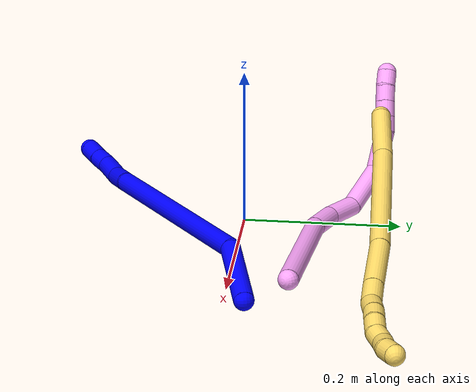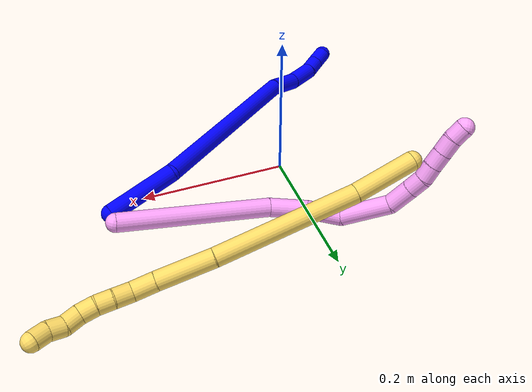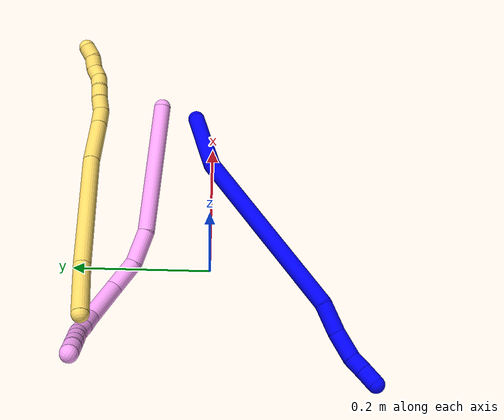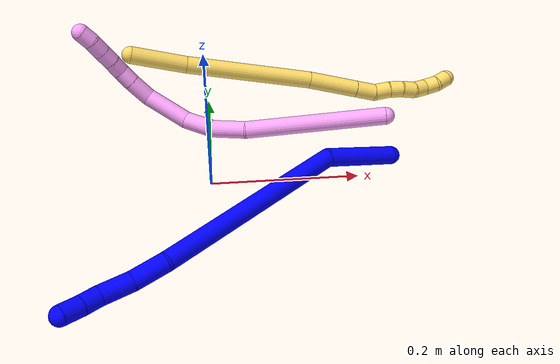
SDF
<sdf version="1.7">
 <world name="default">
  <model name="bin">
   <static>1</static>
   <link name="bottom">
    <collision name="collision-bottom">
     <pose>0 0 -0.01 0 -0 0</pose>
     <geometry><box><size>0.8 0.6 0.02</size></box></geometry>
     <surface>
      <friction><ode><mu>100</mu><mu2>100</mu2></ode></friction>
      <contact><collide_bitmask>65535</collide_bitmask></contact>
     </surface>
    </collision>
   </link>
   <link name="west_wall">
    <collision name="collision-west_wall">
     <pose>-0.41 0 0.1 0 -0 0</pose>
     <geometry><box><size>0.02 0.6 0.2</size></box></geometry>
     <surface>
      <friction><ode><mu>100</mu><mu2>100</mu2></ode></friction>
      <contact><collide_bitmask>65535</collide_bitmask></contact>
     </surface>
    </collision>
   </link>
   <link name="east_wall">
    <collision name="collision-east_wall">
     <pose>0.41 0 0.1 0 -0 0</pose>
     <geometry><box><size>0.02 0.6 0.2</size></box></geometry>
     <surface>
      <friction><ode><mu>100</mu><mu2>100</mu2></ode></friction>
      <contact><collide_bitmask>65535</collide_bitmask></contact>
     </surface>
    </collision>
   </link>
   <link name="south_wall">
    <collision name="collision-south_wall">
     <pose>0 -0.31 0.1 0 -0 0</pose>
     <geometry><box><size>0.8 0.02 0.2</size></box></geometry>
     <surface>
      <friction><ode><mu>100</mu><mu2>100</mu2></ode></friction>
      <contact><collide_bitmask>65535</collide_bitmask></contact>
     </surface>
    </collision>
   </link>
   <link name="north_wall">
    <collision name="collision-north_wall">
     <pose>0 0.31 0.1 0 -0 0</pose>
     <geometry><box><size>0.8 0.02 0.2</size></box></geometry>
     <surface>
      <friction><ode><mu>100</mu><mu2>100</mu2></ode></friction>
      <contact><collide_bitmask>65535</collide_bitmask></contact>
     </surface>
    </collision>
   </link>
  </model>
  <model name="1">
   <static>0</static>
   <link name="1">
    <collision name="collision-cylinder-e_1_1_4">
     <pose>-0.026952 -0.040658 -0.00738 1.75036 -0.577948 -0.684233</pose>
     <geometry><cylinder><radius>0.0125</radius><length>0.09867</length></cylinder></geometry>
     <surface>
      <friction><ode><mu>1.16</mu><mu2>1.16</mu2><slip1>0</slip1><slip2>0</slip2></ode></friction>
      <contact><ode><kp>1e+06</kp><kd>1</kd><max_vel>0</max_vel><min_depth>0.001</min_depth></ode></contact>
     </surface>
    </collision>
    <visual name="visual-cylinder-e_1_1_4">
     <pose>-0.026952 -0.040658 -0.00738 1.75036 -0.577948 -0.684233</pose>
     <geometry><cylinder><radius>0.0125</radius><length>0.09867</length></cylinder></geometry>
     <material><ambient>0 0 1 1</ambient></material>
    </visual>
    <collision name="collision-cylinder-e_2_4_5">
     <pose>-0.138691 -0.156689 -0.084368 2.31645 -0.690632 -1.37588</pose>
     <geometry><cylinder><radius>0.0125</radius><length>0.266196</length></cylinder></geometry>
     <surface>
      <friction><ode><mu>1.16</mu><mu2>1.16</mu2><slip1>0</slip1><slip2>0</slip2></ode></friction>
      <contact><ode><kp>1e+06</kp><kd>1</kd><max_vel>0</max_vel><min_depth>0.001</min_depth></ode></contact>
     </surface>
    </collision>
    <visual name="visual-cylinder-e_2_4_5">
     <pose>-0.138691 -0.156689 -0.084368 2.31645 -0.690632 -1.37588</pose>
     <geometry><cylinder><radius>0.0125</radius><length>0.266196</length></cylinder></geometry>
     <material><ambient>0 0 1 1</ambient></material>
    </visual>
    <collision name="collision-cylinder-e_3_5_6">
     <pose>-0.241615 -0.242906 -0.161461 2.17501 -0.942513 -1.5413</pose>
     <geometry><cylinder><radius>0.0125</radius><length>0.044837</length></cylinder></geometry>
     <surface>
      <friction><ode><mu>1.16</mu><mu2>1.16</mu2><slip1>0</slip1><slip2>0</slip2></ode></friction>
      <contact><ode><kp>1e+06</kp><kd>1</kd><max_vel>0</max_vel><min_depth>0.001</min_depth></ode></contact>
     </surface>
    </collision>
    <visual name="visual-cylinder-e_3_5_6">
     <pose>-0.241615 -0.242906 -0.161461 2.17501 -0.942513 -1.5413</pose>
     <geometry><cylinder><radius>0.0125</radius><length>0.044837</length></cylinder></geometry>
     <material><ambient>0 0 1 1</ambient></material>
    </visual>
    <collision name="collision-cylinder-e_4_6_7">
     <pose>-0.273389 -0.267106 -0.176761 2.10011 -0.72237 -1.16484</pose>
     <geometry><cylinder><radius>0.0125</radius><length>0.041251</length></cylinder></geometry>
     <surface>
      <friction><ode><mu>1.16</mu><mu2>1.16</mu2><slip1>0</slip1><slip2>0</slip2></ode></friction>
      <contact><ode><kp>1e+06</kp><kd>1</kd><max_vel>0</max_vel><min_depth>0.001</min_depth></ode></contact>
     </surface>
    </collision>
    <visual name="visual-cylinder-e_4_6_7">
     <pose>-0.273389 -0.267106 -0.176761 2.10011 -0.72237 -1.16484</pose>
     <geometry><cylinder><radius>0.0125</radius><length>0.041251</length></cylinder></geometry>
     <material><ambient>0 0 1 1</ambient></material>
    </visual>
    <collision name="collision-cylinder-e_5_7_8">
     <pose>-0.292974 -0.28825 -0.191028 2.26281 -0.5316 -1.04996</pose>
     <geometry><cylinder><radius>0.0125</radius><length>0.023466</length></cylinder></geometry>
     <surface>
      <friction><ode><mu>1.16</mu><mu2>1.16</mu2><slip1>0</slip1><slip2>0</slip2></ode></friction>
      <contact><ode><kp>1e+06</kp><kd>1</kd><max_vel>0</max_vel><min_depth>0.001</min_depth></ode></contact>
     </surface>
    </collision>
    <visual name="visual-cylinder-e_5_7_8">
     <pose>-0.292974 -0.28825 -0.191028 2.26281 -0.5316 -1.04996</pose>
     <geometry><cylinder><radius>0.0125</radius><length>0.023466</length></cylinder></geometry>
     <material><ambient>0 0 1 1</ambient></material>
    </visual>
    <collision name="collision-cylinder-e_6_8_2">
     <pose>-0.305209 -0.305094 -0.203963 2.19202 -0.513949 -0.945214</pose>
     <geometry><cylinder><radius>0.0125</radius><length>0.02558</length></cylinder></geometry>
     <surface>
      <friction><ode><mu>1.16</mu><mu2>1.16</mu2><slip1>0</slip1><slip2>0</slip2></ode></friction>
      <contact><ode><kp>1e+06</kp><kd>1</kd><max_vel>0</max_vel><min_depth>0.001</min_depth></ode></contact>
     </surface>
    </collision>
    <visual name="visual-cylinder-e_6_8_2">
     <pose>-0.305209 -0.305094 -0.203963 2.19202 -0.513949 -0.945214</pose>
     <geometry><cylinder><radius>0.0125</radius><length>0.02558</length></cylinder></geometry>
     <material><ambient>0 0 1 1</ambient></material>
    </visual>
    <collision name="collision-sphere-2">
     <pose>-0.311497 -0.31415 -0.210446 0 -0 0</pose>
     <geometry><sphere><radius>0.0125</radius></sphere></geometry>
     <surface>
      <friction><ode><mu>1.16</mu><mu2>1.16</mu2><slip1>0</slip1><slip2>0</slip2></ode></friction>
      <contact><ode><kp>1e+06</kp><kd>1</kd><max_vel>0</max_vel><min_depth>0.001</min_depth></ode></contact>
     </surface>
    </collision>
    <visual name="visual-sphere-2">
     <pose>-0.311497 -0.31415 -0.210446 0 -0 0</pose>
     <geometry><sphere><radius>0.0125</radius></sphere></geometry>
     <material><ambient>0 0 1 1</ambient></material>
    </visual>
    <collision name="collision-sphere-4">
     <pose>-0.053904 -0.081316 -0.014761 0 -0 0</pose>
     <geometry><sphere><radius>0.0125</radius></sphere></geometry>
     <surface>
      <friction><ode><mu>1.16</mu><mu2>1.16</mu2><slip1>0</slip1><slip2>0</slip2></ode></friction>
      <contact><ode><kp>1e+06</kp><kd>1</kd><max_vel>0</max_vel><min_depth>0.001</min_depth></ode></contact>
     </surface>
    </collision>
    <visual name="visual-sphere-4">
     <pose>-0.053904 -0.081316 -0.014761 0 -0 0</pose>
     <geometry><sphere><radius>0.0125</radius></sphere></geometry>
     <material><ambient>0 0 1 1</ambient></material>
    </visual>
    <collision name="collision-sphere-1">
     <geometry><sphere><radius>0.0125</radius></sphere></geometry>
     <surface>
      <friction><ode><mu>1.16</mu><mu2>1.16</mu2><slip1>0</slip1><slip2>0</slip2></ode></friction>
      <contact><ode><kp>1e+06</kp><kd>1</kd><max_vel>0</max_vel><min_depth>0.001</min_depth></ode></contact>
     </surface>
    </collision>
    <visual name="visual-sphere-1">
     <geometry><sphere><radius>0.0125</radius></sphere></geometry>
     <material><ambient>0 0 1 1</ambient></material>
    </visual>
    <collision name="collision-sphere-8">
     <pose>-0.298921 -0.296037 -0.197481 0 -0 0</pose>
     <geometry><sphere><radius>0.0125</radius></sphere></geometry>
     <surface>
      <friction><ode><mu>1.16</mu><mu2>1.16</mu2><slip1>0</slip1><slip2>0</slip2></ode></friction>
      <contact><ode><kp>1e+06</kp><kd>1</kd><max_vel>0</max_vel><min_depth>0.001</min_depth></ode></contact>
     </surface>
    </collision>
    <visual name="visual-sphere-8">
     <pose>-0.298921 -0.296037 -0.197481 0 -0 0</pose>
     <geometry><sphere><radius>0.0125</radius></sphere></geometry>
     <material><ambient>0 0 1 1</ambient></material>
    </visual>
    <collision name="collision-sphere-5">
     <pose>-0.223477 -0.232062 -0.153975 0 -0 0</pose>
     <geometry><sphere><radius>0.0125</radius></sphere></geometry>
     <surface>
      <friction><ode><mu>1.16</mu><mu2>1.16</mu2><slip1>0</slip1><slip2>0</slip2></ode></friction>
      <contact><ode><kp>1e+06</kp><kd>1</kd><max_vel>0</max_vel><min_depth>0.001</min_depth></ode></contact>
     </surface>
    </collision>
    <visual name="visual-sphere-5">
     <pose>-0.223477 -0.232062 -0.153975 0 -0 0</pose>
     <geometry><sphere><radius>0.0125</radius></sphere></geometry>
     <material><ambient>0 0 1 1</ambient></material>
    </visual>
    <collision name="collision-sphere-6">
     <pose>-0.259752 -0.253749 -0.168947 0 -0 0</pose>
     <geometry><sphere><radius>0.0125</radius></sphere></geometry>
     <surface>
      <friction><ode><mu>1.16</mu><mu2>1.16</mu2><slip1>0</slip1><slip2>0</slip2></ode></friction>
      <contact><ode><kp>1e+06</kp><kd>1</kd><max_vel>0</max_vel><min_depth>0.001</min_depth></ode></contact>
     </surface>
    </collision>
    <visual name="visual-sphere-6">
     <pose>-0.259752 -0.253749 -0.168947 0 -0 0</pose>
     <geometry><sphere><radius>0.0125</radius></sphere></geometry>
     <material><ambient>0 0 1 1</ambient></material>
    </visual>
    <collision name="collision-sphere-7">
     <pose>-0.287026 -0.280463 -0.184574 0 -0 0</pose>
     <geometry><sphere><radius>0.0125</radius></sphere></geometry>
     <surface>
      <friction><ode><mu>1.16</mu><mu2>1.16</mu2><slip1>0</slip1><slip2>0</slip2></ode></friction>
      <contact><ode><kp>1e+06</kp><kd>1</kd><max_vel>0</max_vel><min_depth>0.001</min_depth></ode></contact>
     </surface>
    </collision>
    <visual name="visual-sphere-7">
     <pose>-0.287026 -0.280463 -0.184574 0 -0 0</pose>
     <geometry><sphere><radius>0.0125</radius></sphere></geometry>
     <material><ambient>0 0 1 1</ambient></material>
    </visual>
    <inertial>
     <pose>-0.152743 -0.164399 -0.094835 0 -0 0</pose>
     <mass>0.5</mass>
     <inertia>
      <ixx>-0.000984</ixx>
      <ixy>0</ixy>
      <ixz>0</ixz>
      <iyy>-0.000735</iyy>
      <iyz>0</iyz>
      <izz>0.002029</izz>
     </inertia>
    </inertial>
   </link>
   <pose>0.249371 0.026845 0.011892 -1.48263 -0.740297 0.047758</pose>
  </model>
  <model name="4">
   <static>0</static>
   <link name="4">
    <collision name="collision-cylinder-e_1_1_4">
     <pose>-0.003372 0.043324 0.090178 -0.447867 -0.033693 0.007674</pose>
     <geometry><cylinder><radius>0.0125</radius><length>0.200204</length></cylinder></geometry>
     <surface>
      <friction><ode><mu>1.16</mu><mu2>1.16</mu2><slip1>0</slip1><slip2>0</slip2></ode></friction>
      <contact><ode><kp>1e+06</kp><kd>1</kd><max_vel>0</max_vel><min_depth>0.001</min_depth></ode></contact>
     </surface>
    </collision>
    <visual name="visual-cylinder-e_1_1_4">
     <pose>-0.003372 0.043324 0.090178 -0.447867 -0.033693 0.007674</pose>
     <geometry><cylinder><radius>0.0125</radius><length>0.200204</length></cylinder></geometry>
     <material><ambient>1 0.65098 0.996078 1</ambient></material>
    </visual>
    <collision name="collision-cylinder-e_2_4_5">
     <pose>-0.007669 0.091962 0.204913 -0.213116 -0.036779 0.003934</pose>
     <geometry><cylinder><radius>0.0125</radius><length>0.050285</length></cylinder></geometry>
     <surface>
      <friction><ode><mu>1.16</mu><mu2>1.16</mu2><slip1>0</slip1><slip2>0</slip2></ode></friction>
      <contact><ode><kp>1e+06</kp><kd>1</kd><max_vel>0</max_vel><min_depth>0.001</min_depth></ode></contact>
     </surface>
    </collision>
    <visual name="visual-cylinder-e_2_4_5">
     <pose>-0.007669 0.091962 0.204913 -0.213116 -0.036779 0.003934</pose>
     <geometry><cylinder><radius>0.0125</radius><length>0.050285</length></cylinder></geometry>
     <material><ambient>1 0.65098 0.996078 1</ambient></material>
    </visual>
    <collision name="collision-cylinder-e_3_5_6">
     <pose>-0.011402 0.09542 0.252294 0.08115 -0.122071 -0.004962</pose>
     <geometry><cylinder><radius>0.0125</radius><length>0.04614</length></cylinder></geometry>
     <surface>
      <friction><ode><mu>1.16</mu><mu2>1.16</mu2><slip1>0</slip1><slip2>0</slip2></ode></friction>
      <contact><ode><kp>1e+06</kp><kd>1</kd><max_vel>0</max_vel><min_depth>0.001</min_depth></ode></contact>
     </surface>
    </collision>
    <visual name="visual-cylinder-e_3_5_6">
     <pose>-0.011402 0.09542 0.252294 0.08115 -0.122071 -0.004962</pose>
     <geometry><cylinder><radius>0.0125</radius><length>0.04614</length></cylinder></geometry>
     <material><ambient>1 0.65098 0.996078 1</ambient></material>
    </visual>
    <collision name="collision-cylinder-e_4_6_7">
     <pose>-0.032154 0.09516 0.303117 -0.056925 -0.569156 0.016656</pose>
     <geometry><cylinder><radius>0.0125</radius><length>0.066588</length></cylinder></geometry>
     <surface>
      <friction><ode><mu>1.16</mu><mu2>1.16</mu2><slip1>0</slip1><slip2>0</slip2></ode></friction>
      <contact><ode><kp>1e+06</kp><kd>1</kd><max_vel>0</max_vel><min_depth>0.001</min_depth></ode></contact>
     </surface>
    </collision>
    <visual name="visual-cylinder-e_4_6_7">
     <pose>-0.032154 0.09516 0.303117 -0.056925 -0.569156 0.016656</pose>
     <geometry><cylinder><radius>0.0125</radius><length>0.066588</length></cylinder></geometry>
     <material><ambient>1 0.65098 0.996078 1</ambient></material>
    </visual>
    <collision name="collision-cylinder-e_5_7_8">
     <pose>-0.063494 0.099682 0.340268 -0.309521 -0.948611 0.159846</pose>
     <geometry><cylinder><radius>0.0125</radius><length>0.032972</length></cylinder></geometry>
     <surface>
      <friction><ode><mu>1.16</mu><mu2>1.16</mu2><slip1>0</slip1><slip2>0</slip2></ode></friction>
      <contact><ode><kp>1e+06</kp><kd>1</kd><max_vel>0</max_vel><min_depth>0.001</min_depth></ode></contact>
     </surface>
    </collision>
    <visual name="visual-cylinder-e_5_7_8">
     <pose>-0.063494 0.099682 0.340268 -0.309521 -0.948611 0.159846</pose>
     <geometry><cylinder><radius>0.0125</radius><length>0.032972</length></cylinder></geometry>
     <material><ambient>1 0.65098 0.996078 1</ambient></material>
    </visual>
    <collision name="collision-cylinder-e_6_8_9">
     <pose>-0.086162 0.103984 0.355125 -0.23652 -1.00645 0.130628</pose>
     <geometry><cylinder><radius>0.0125</radius><length>0.021945</length></cylinder></geometry>
     <surface>
      <friction><ode><mu>1.16</mu><mu2>1.16</mu2><slip1>0</slip1><slip2>0</slip2></ode></friction>
      <contact><ode><kp>1e+06</kp><kd>1</kd><max_vel>0</max_vel><min_depth>0.001</min_depth></ode></contact>
     </surface>
    </collision>
    <visual name="visual-cylinder-e_6_8_9">
     <pose>-0.086162 0.103984 0.355125 -0.23652 -1.00645 0.130628</pose>
     <geometry><cylinder><radius>0.0125</radius><length>0.021945</length></cylinder></geometry>
     <material><ambient>1 0.65098 0.996078 1</ambient></material>
    </visual>
    <collision name="collision-cylinder-e_7_9_10">
     <pose>-0.104801 0.108231 0.363907 -0.751085 -1.14856 0.499528</pose>
     <geometry><cylinder><radius>0.0125</radius><length>0.02054</length></cylinder></geometry>
     <surface>
      <friction><ode><mu>1.16</mu><mu2>1.16</mu2><slip1>0</slip1><slip2>0</slip2></ode></friction>
      <contact><ode><kp>1e+06</kp><kd>1</kd><max_vel>0</max_vel><min_depth>0.001</min_depth></ode></contact>
     </surface>
    </collision>
    <visual name="visual-cylinder-e_7_9_10">
     <pose>-0.104801 0.108231 0.363907 -0.751085 -1.14856 0.499528</pose>
     <geometry><cylinder><radius>0.0125</radius><length>0.02054</length></cylinder></geometry>
     <material><ambient>1 0.65098 0.996078 1</ambient></material>
    </visual>
    <collision name="collision-cylinder-e_8_10_11">
     <pose>-0.123303 0.113899 0.370437 -0.680454 -1.11808 0.435888</pose>
     <geometry><cylinder><radius>0.0125</radius><length>0.020315</length></cylinder></geometry>
     <surface>
      <friction><ode><mu>1.16</mu><mu2>1.16</mu2><slip1>0</slip1><slip2>0</slip2></ode></friction>
      <contact><ode><kp>1e+06</kp><kd>1</kd><max_vel>0</max_vel><min_depth>0.001</min_depth></ode></contact>
     </surface>
    </collision>
    <visual name="visual-cylinder-e_8_10_11">
     <pose>-0.123303 0.113899 0.370437 -0.680454 -1.11808 0.435888</pose>
     <geometry><cylinder><radius>0.0125</radius><length>0.020315</length></cylinder></geometry>
     <material><ambient>1 0.65098 0.996078 1</ambient></material>
    </visual>
    <collision name="collision-cylinder-e_9_11_12">
     <pose>-0.141917 0.119601 0.377347 -0.699194 -1.1262 0.452415</pose>
     <geometry><cylinder><radius>0.0125</radius><length>0.021001</length></cylinder></geometry>
     <surface>
      <friction><ode><mu>1.16</mu><mu2>1.16</mu2><slip1>0</slip1><slip2>0</slip2></ode></friction>
      <contact><ode><kp>1e+06</kp><kd>1</kd><max_vel>0</max_vel><min_depth>0.001</min_depth></ode></contact>
     </surface>
    </collision>
    <visual name="visual-cylinder-e_9_11_12">
     <pose>-0.141917 0.119601 0.377347 -0.699194 -1.1262 0.452415</pose>
     <geometry><cylinder><radius>0.0125</radius><length>0.021001</length></cylinder></geometry>
     <material><ambient>1 0.65098 0.996078 1</ambient></material>
    </visual>
    <collision name="collision-cylinder-e_10_12_2">
     <pose>-0.15964 0.125258 0.385761 -0.506487 -0.968332 0.270552</pose>
     <geometry><cylinder><radius>0.0125</radius><length>0.020009</length></cylinder></geometry>
     <surface>
      <friction><ode><mu>1.16</mu><mu2>1.16</mu2><slip1>0</slip1><slip2>0</slip2></ode></friction>
      <contact><ode><kp>1e+06</kp><kd>1</kd><max_vel>0</max_vel><min_depth>0.001</min_depth></ode></contact>
     </surface>
    </collision>
    <visual name="visual-cylinder-e_10_12_2">
     <pose>-0.15964 0.125258 0.385761 -0.506487 -0.968332 0.270552</pose>
     <geometry><cylinder><radius>0.0125</radius><length>0.020009</length></cylinder></geometry>
     <material><ambient>1 0.65098 0.996078 1</ambient></material>
    </visual>
    <collision name="collision-sphere-2">
     <pose>-0.167883 0.128008 0.390719 0 -0 0</pose>
     <geometry><sphere><radius>0.0125</radius></sphere></geometry>
     <surface>
      <friction><ode><mu>1.16</mu><mu2>1.16</mu2><slip1>0</slip1><slip2>0</slip2></ode></friction>
      <contact><ode><kp>1e+06</kp><kd>1</kd><max_vel>0</max_vel><min_depth>0.001</min_depth></ode></contact>
     </surface>
    </collision>
    <visual name="visual-sphere-2">
     <pose>-0.167883 0.128008 0.390719 0 -0 0</pose>
     <geometry><sphere><radius>0.0125</radius></sphere></geometry>
     <material><ambient>1 0.65098 0.996078 1</ambient></material>
    </visual>
    <collision name="collision-sphere-12">
     <pose>-0.151397 0.122507 0.380803 0 -0 0</pose>
     <geometry><sphere><radius>0.0125</radius></sphere></geometry>
     <surface>
      <friction><ode><mu>1.16</mu><mu2>1.16</mu2><slip1>0</slip1><slip2>0</slip2></ode></friction>
      <contact><ode><kp>1e+06</kp><kd>1</kd><max_vel>0</max_vel><min_depth>0.001</min_depth></ode></contact>
     </surface>
    </collision>
    <visual name="visual-sphere-12">
     <pose>-0.151397 0.122507 0.380803 0 -0 0</pose>
     <geometry><sphere><radius>0.0125</radius></sphere></geometry>
     <material><ambient>1 0.65098 0.996078 1</ambient></material>
    </visual>
    <collision name="collision-sphere-11">
     <pose>-0.132437 0.116694 0.37389 0 -0 0</pose>
     <geometry><sphere><radius>0.0125</radius></sphere></geometry>
     <surface>
      <friction><ode><mu>1.16</mu><mu2>1.16</mu2><slip1>0</slip1><slip2>0</slip2></ode></friction>
      <contact><ode><kp>1e+06</kp><kd>1</kd><max_vel>0</max_vel><min_depth>0.001</min_depth></ode></contact>
     </surface>
    </collision>
    <visual name="visual-sphere-11">
     <pose>-0.132437 0.116694 0.37389 0 -0 0</pose>
     <geometry><sphere><radius>0.0125</radius></sphere></geometry>
     <material><ambient>1 0.65098 0.996078 1</ambient></material>
    </visual>
    <collision name="collision-sphere-10">
     <pose>-0.114169 0.111103 0.366983 0 -0 0</pose>
     <geometry><sphere><radius>0.0125</radius></sphere></geometry>
     <surface>
      <friction><ode><mu>1.16</mu><mu2>1.16</mu2><slip1>0</slip1><slip2>0</slip2></ode></friction>
      <contact><ode><kp>1e+06</kp><kd>1</kd><max_vel>0</max_vel><min_depth>0.001</min_depth></ode></contact>
     </surface>
    </collision>
    <visual name="visual-sphere-10">
     <pose>-0.114169 0.111103 0.366983 0 -0 0</pose>
     <geometry><sphere><radius>0.0125</radius></sphere></geometry>
     <material><ambient>1 0.65098 0.996078 1</ambient></material>
    </visual>
    <collision name="collision-sphere-9">
     <pose>-0.095433 0.105359 0.360831 0 -0 0</pose>
     <geometry><sphere><radius>0.0125</radius></sphere></geometry>
     <surface>
      <friction><ode><mu>1.16</mu><mu2>1.16</mu2><slip1>0</slip1><slip2>0</slip2></ode></friction>
      <contact><ode><kp>1e+06</kp><kd>1</kd><max_vel>0</max_vel><min_depth>0.001</min_depth></ode></contact>
     </surface>
    </collision>
    <visual name="visual-sphere-9">
     <pose>-0.095433 0.105359 0.360831 0 -0 0</pose>
     <geometry><sphere><radius>0.0125</radius></sphere></geometry>
     <material><ambient>1 0.65098 0.996078 1</ambient></material>
    </visual>
    <collision name="collision-sphere-4">
     <pose>-0.006744 0.086648 0.180356 0 -0 0</pose>
     <geometry><sphere><radius>0.0125</radius></sphere></geometry>
     <surface>
      <friction><ode><mu>1.16</mu><mu2>1.16</mu2><slip1>0</slip1><slip2>0</slip2></ode></friction>
      <contact><ode><kp>1e+06</kp><kd>1</kd><max_vel>0</max_vel><min_depth>0.001</min_depth></ode></contact>
     </surface>
    </collision>
    <visual name="visual-sphere-4">
     <pose>-0.006744 0.086648 0.180356 0 -0 0</pose>
     <geometry><sphere><radius>0.0125</radius></sphere></geometry>
     <material><ambient>1 0.65098 0.996078 1</ambient></material>
    </visual>
    <collision name="collision-sphere-1">
     <geometry><sphere><radius>0.0125</radius></sphere></geometry>
     <surface>
      <friction><ode><mu>1.16</mu><mu2>1.16</mu2><slip1>0</slip1><slip2>0</slip2></ode></friction>
      <contact><ode><kp>1e+06</kp><kd>1</kd><max_vel>0</max_vel><min_depth>0.001</min_depth></ode></contact>
     </surface>
    </collision>
    <visual name="visual-sphere-1">
     <geometry><sphere><radius>0.0125</radius></sphere></geometry>
     <material><ambient>1 0.65098 0.996078 1</ambient></material>
    </visual>
    <collision name="collision-sphere-8">
     <pose>-0.076891 0.102609 0.34942 0 -0 0</pose>
     <geometry><sphere><radius>0.0125</radius></sphere></geometry>
     <surface>
      <friction><ode><mu>1.16</mu><mu2>1.16</mu2><slip1>0</slip1><slip2>0</slip2></ode></friction>
      <contact><ode><kp>1e+06</kp><kd>1</kd><max_vel>0</max_vel><min_depth>0.001</min_depth></ode></contact>
     </surface>
    </collision>
    <visual name="visual-sphere-8">
     <pose>-0.076891 0.102609 0.34942 0 -0 0</pose>
     <geometry><sphere><radius>0.0125</radius></sphere></geometry>
     <material><ambient>1 0.65098 0.996078 1</ambient></material>
    </visual>
    <collision name="collision-sphere-5">
     <pose>-0.008593 0.097276 0.229471 0 -0 0</pose>
     <geometry><sphere><radius>0.0125</radius></sphere></geometry>
     <surface>
      <friction><ode><mu>1.16</mu><mu2>1.16</mu2><slip1>0</slip1><slip2>0</slip2></ode></friction>
      <contact><ode><kp>1e+06</kp><kd>1</kd><max_vel>0</max_vel><min_depth>0.001</min_depth></ode></contact>
     </surface>
    </collision>
    <visual name="visual-sphere-5">
     <pose>-0.008593 0.097276 0.229471 0 -0 0</pose>
     <geometry><sphere><radius>0.0125</radius></sphere></geometry>
     <material><ambient>1 0.65098 0.996078 1</ambient></material>
    </visual>
    <collision name="collision-sphere-6">
     <pose>-0.014212 0.093564 0.275117 0 -0 0</pose>
     <geometry><sphere><radius>0.0125</radius></sphere></geometry>
     <surface>
      <friction><ode><mu>1.16</mu><mu2>1.16</mu2><slip1>0</slip1><slip2>0</slip2></ode></friction>
      <contact><ode><kp>1e+06</kp><kd>1</kd><max_vel>0</max_vel><min_depth>0.001</min_depth></ode></contact>
     </surface>
    </collision>
    <visual name="visual-sphere-6">
     <pose>-0.014212 0.093564 0.275117 0 -0 0</pose>
     <geometry><sphere><radius>0.0125</radius></sphere></geometry>
     <material><ambient>1 0.65098 0.996078 1</ambient></material>
    </visual>
    <collision name="collision-sphere-7">
     <pose>-0.050097 0.096755 0.331116 0 -0 0</pose>
     <geometry><sphere><radius>0.0125</radius></sphere></geometry>
     <surface>
      <friction><ode><mu>1.16</mu><mu2>1.16</mu2><slip1>0</slip1><slip2>0</slip2></ode></friction>
      <contact><ode><kp>1e+06</kp><kd>1</kd><max_vel>0</max_vel><min_depth>0.001</min_depth></ode></contact>
     </surface>
    </collision>
    <visual name="visual-sphere-7">
     <pose>-0.050097 0.096755 0.331116 0 -0 0</pose>
     <geometry><sphere><radius>0.0125</radius></sphere></geometry>
     <material><ambient>1 0.65098 0.996078 1</ambient></material>
    </visual>
    <inertial>
     <pose>-0.037089 0.078322 0.219678 0 -0 0</pose>
     <mass>0.5</mass>
     <inertia>
      <ixx>0.000721</ixx>
      <ixy>0</ixy>
      <ixz>0</ixz>
      <iyy>0.000688</iyy>
      <iyz>0</iyz>
      <izz>-0.000219</izz>
     </inertia>
    </inertial>
   </link>
   <pose>0.250603 0.078853 0.042441 -2.90772 1.41466 -0.294223</pose>
  </model>
  <model name="5">
   <static>0</static>
   <link name="5">
    <collision name="collision-cylinder-e_1_1_4">
     <pose>0.004659 0.004338 0.040244 -0.107376 0.114605 -0.006166</pose>
     <geometry><cylinder><radius>0.0125</radius><length>0.08149</length></cylinder></geometry>
     <surface>
      <friction><ode><mu>1.16</mu><mu2>1.16</mu2><slip1>0</slip1><slip2>0</slip2></ode></friction>
      <contact><ode><kp>1e+06</kp><kd>1</kd><max_vel>0</max_vel><min_depth>0.001</min_depth></ode></contact>
     </surface>
    </collision>
    <visual name="visual-cylinder-e_1_1_4">
     <pose>0.004659 0.004338 0.040244 -0.107376 0.114605 -0.006166</pose>
     <geometry><cylinder><radius>0.0125</radius><length>0.08149</length></cylinder></geometry>
     <material><ambient>1 0.858824 0.4 1</ambient></material>
    </visual>
    <collision name="collision-cylinder-e_2_4_5">
     <pose>0.026602 0.012008 0.172379 -0.036248 0.185795 -0.003377</pose>
     <geometry><cylinder><radius>0.0125</radius><length>0.187121</length></cylinder></geometry>
     <surface>
      <friction><ode><mu>1.16</mu><mu2>1.16</mu2><slip1>0</slip1><slip2>0</slip2></ode></friction>
      <contact><ode><kp>1e+06</kp><kd>1</kd><max_vel>0</max_vel><min_depth>0.001</min_depth></ode></contact>
     </surface>
    </collision>
    <visual name="visual-cylinder-e_2_4_5">
     <pose>0.026602 0.012008 0.172379 -0.036248 0.185795 -0.003377</pose>
     <geometry><cylinder><radius>0.0125</radius><length>0.187121</length></cylinder></geometry>
     <material><ambient>1 0.858824 0.4 1</ambient></material>
    </visual>
    <collision name="collision-cylinder-e_3_5_6">
     <pose>0.053311 0.018442 0.299726 -0.087238 0.258874 -0.011362</pose>
     <geometry><cylinder><radius>0.0125</radius><length>0.07364</length></cylinder></geometry>
     <surface>
      <friction><ode><mu>1.16</mu><mu2>1.16</mu2><slip1>0</slip1><slip2>0</slip2></ode></friction>
      <contact><ode><kp>1e+06</kp><kd>1</kd><max_vel>0</max_vel><min_depth>0.001</min_depth></ode></contact>
     </surface>
    </collision>
    <visual name="visual-cylinder-e_3_5_6">
     <pose>0.053311 0.018442 0.299726 -0.087238 0.258874 -0.011362</pose>
     <geometry><cylinder><radius>0.0125</radius><length>0.07364</length></cylinder></geometry>
     <material><ambient>1 0.858824 0.4 1</ambient></material>
    </visual>
    <collision name="collision-cylinder-e_4_6_7">
     <pose>0.066202 0.022954 0.349993 -0.095034 0.228889 -0.010932</pose>
     <geometry><cylinder><radius>0.0125</radius><length>0.030549</length></cylinder></geometry>
     <surface>
      <friction><ode><mu>1.16</mu><mu2>1.16</mu2><slip1>0</slip1><slip2>0</slip2></ode></friction>
      <contact><ode><kp>1e+06</kp><kd>1</kd><max_vel>0</max_vel><min_depth>0.001</min_depth></ode></contact>
     </surface>
    </collision>
    <visual name="visual-cylinder-e_4_6_7">
     <pose>0.066202 0.022954 0.349993 -0.095034 0.228889 -0.010932</pose>
     <geometry><cylinder><radius>0.0125</radius><length>0.030549</length></cylinder></geometry>
     <material><ambient>1 0.858824 0.4 1</ambient></material>
    </visual>
    <collision name="collision-cylinder-e_5_7_8">
     <pose>0.070926 0.021402 0.37617 0.255056 0.106719 0.013697</pose>
     <geometry><cylinder><radius>0.0125</radius><length>0.023631</length></cylinder></geometry>
     <surface>
      <friction><ode><mu>1.16</mu><mu2>1.16</mu2><slip1>0</slip1><slip2>0</slip2></ode></friction>
      <contact><ode><kp>1e+06</kp><kd>1</kd><max_vel>0</max_vel><min_depth>0.001</min_depth></ode></contact>
     </surface>
    </collision>
    <visual name="visual-cylinder-e_5_7_8">
     <pose>0.070926 0.021402 0.37617 0.255056 0.106719 0.013697</pose>
     <geometry><cylinder><radius>0.0125</radius><length>0.023631</length></cylinder></geometry>
     <material><ambient>1 0.858824 0.4 1</ambient></material>
    </visual>
    <collision name="collision-cylinder-e_6_8_9">
     <pose>0.07388 0.017074 0.397492 0.136176 0.167152 0.011425</pose>
     <geometry><cylinder><radius>0.0125</radius><length>0.020378</length></cylinder></geometry>
     <surface>
      <friction><ode><mu>1.16</mu><mu2>1.16</mu2><slip1>0</slip1><slip2>0</slip2></ode></friction>
      <contact><ode><kp>1e+06</kp><kd>1</kd><max_vel>0</max_vel><min_depth>0.001</min_depth></ode></contact>
     </surface>
    </collision>
    <visual name="visual-cylinder-e_6_8_9">
     <pose>0.07388 0.017074 0.397492 0.136176 0.167152 0.011425</pose>
     <geometry><cylinder><radius>0.0125</radius><length>0.020378</length></cylinder></geometry>
     <material><ambient>1 0.858824 0.4 1</ambient></material>
    </visual>
    <collision name="collision-cylinder-e_7_9_10">
     <pose>0.076594 0.015913 0.417928 -0.019398 0.09685 -0.00094</pose>
     <geometry><cylinder><radius>0.0125</radius><length>0.021067</length></cylinder></geometry>
     <surface>
      <friction><ode><mu>1.16</mu><mu2>1.16</mu2><slip1>0</slip1><slip2>0</slip2></ode></friction>
      <contact><ode><kp>1e+06</kp><kd>1</kd><max_vel>0</max_vel><min_depth>0.001</min_depth></ode></contact>
     </surface>
    </collision>
    <visual name="visual-cylinder-e_7_9_10">
     <pose>0.076594 0.015913 0.417928 -0.019398 0.09685 -0.00094</pose>
     <geometry><cylinder><radius>0.0125</radius><length>0.021067</length></cylinder></geometry>
     <material><ambient>1 0.858824 0.4 1</ambient></material>
    </visual>
    <collision name="collision-cylinder-e_8_10_11">
     <pose>0.075671 0.014426 0.43863 0.163988 -0.185303 -0.015271</pose>
     <geometry><cylinder><radius>0.0125</radius><length>0.021079</length></cylinder></geometry>
     <surface>
      <friction><ode><mu>1.16</mu><mu2>1.16</mu2><slip1>0</slip1><slip2>0</slip2></ode></friction>
      <contact><ode><kp>1e+06</kp><kd>1</kd><max_vel>0</max_vel><min_depth>0.001</min_depth></ode></contact>
     </surface>
    </collision>
    <visual name="visual-cylinder-e_8_10_11">
     <pose>0.075671 0.014426 0.43863 0.163988 -0.185303 -0.015271</pose>
     <geometry><cylinder><radius>0.0125</radius><length>0.021079</length></cylinder></geometry>
     <material><ambient>1 0.858824 0.4 1</ambient></material>
    </visual>
    <collision name="collision-cylinder-e_9_11_12">
     <pose>0.07493 0.009019 0.458233 0.377082 0.118511 0.022638</pose>
     <geometry><cylinder><radius>0.0125</radius><length>0.020326</length></cylinder></geometry>
     <surface>
      <friction><ode><mu>1.16</mu><mu2>1.16</mu2><slip1>0</slip1><slip2>0</slip2></ode></friction>
      <contact><ode><kp>1e+06</kp><kd>1</kd><max_vel>0</max_vel><min_depth>0.001</min_depth></ode></contact>
     </surface>
    </collision>
    <visual name="visual-cylinder-e_9_11_12">
     <pose>0.07493 0.009019 0.458233 0.377082 0.118511 0.022638</pose>
     <geometry><cylinder><radius>0.0125</radius><length>0.020326</length></cylinder></geometry>
     <material><ambient>1 0.858824 0.4 1</ambient></material>
    </visual>
    <collision name="collision-cylinder-e_10_12_2">
     <pose>0.073806 0.001377 0.476917 0.399397 -0.226415 -0.046014</pose>
     <geometry><cylinder><radius>0.0125</radius><length>0.02072</length></cylinder></geometry>
     <surface>
      <friction><ode><mu>1.16</mu><mu2>1.16</mu2><slip1>0</slip1><slip2>0</slip2></ode></friction>
      <contact><ode><kp>1e+06</kp><kd>1</kd><max_vel>0</max_vel><min_depth>0.001</min_depth></ode></contact>
     </surface>
    </collision>
    <visual name="visual-cylinder-e_10_12_2">
     <pose>0.073806 0.001377 0.476917 0.399397 -0.226415 -0.046014</pose>
     <geometry><cylinder><radius>0.0125</radius><length>0.02072</length></cylinder></geometry>
     <material><ambient>1 0.858824 0.4 1</ambient></material>
    </visual>
    <collision name="collision-sphere-2">
     <pose>0.071481 -0.002549 0.486218 0 -0 0</pose>
     <geometry><sphere><radius>0.0125</radius></sphere></geometry>
     <surface>
      <friction><ode><mu>1.16</mu><mu2>1.16</mu2><slip1>0</slip1><slip2>0</slip2></ode></friction>
      <contact><ode><kp>1e+06</kp><kd>1</kd><max_vel>0</max_vel><min_depth>0.001</min_depth></ode></contact>
     </surface>
    </collision>
    <visual name="visual-sphere-2">
     <pose>0.071481 -0.002549 0.486218 0 -0 0</pose>
     <geometry><sphere><radius>0.0125</radius></sphere></geometry>
     <material><ambient>1 0.858824 0.4 1</ambient></material>
    </visual>
    <collision name="collision-sphere-12">
     <pose>0.076132 0.005303 0.467616 0 -0 0</pose>
     <geometry><sphere><radius>0.0125</radius></sphere></geometry>
     <surface>
      <friction><ode><mu>1.16</mu><mu2>1.16</mu2><slip1>0</slip1><slip2>0</slip2></ode></friction>
      <contact><ode><kp>1e+06</kp><kd>1</kd><max_vel>0</max_vel><min_depth>0.001</min_depth></ode></contact>
     </surface>
    </collision>
    <visual name="visual-sphere-12">
     <pose>0.076132 0.005303 0.467616 0 -0 0</pose>
     <geometry><sphere><radius>0.0125</radius></sphere></geometry>
     <material><ambient>1 0.858824 0.4 1</ambient></material>
    </visual>
    <collision name="collision-sphere-11">
     <pose>0.073729 0.012734 0.44885 0 -0 0</pose>
     <geometry><sphere><radius>0.0125</radius></sphere></geometry>
     <surface>
      <friction><ode><mu>1.16</mu><mu2>1.16</mu2><slip1>0</slip1><slip2>0</slip2></ode></friction>
      <contact><ode><kp>1e+06</kp><kd>1</kd><max_vel>0</max_vel><min_depth>0.001</min_depth></ode></contact>
     </surface>
    </collision>
    <visual name="visual-sphere-11">
     <pose>0.073729 0.012734 0.44885 0 -0 0</pose>
     <geometry><sphere><radius>0.0125</radius></sphere></geometry>
     <material><ambient>1 0.858824 0.4 1</ambient></material>
    </visual>
    <collision name="collision-sphere-10">
     <pose>0.077612 0.016117 0.428411 0 -0 0</pose>
     <geometry><sphere><radius>0.0125</radius></sphere></geometry>
     <surface>
      <friction><ode><mu>1.16</mu><mu2>1.16</mu2><slip1>0</slip1><slip2>0</slip2></ode></friction>
      <contact><ode><kp>1e+06</kp><kd>1</kd><max_vel>0</max_vel><min_depth>0.001</min_depth></ode></contact>
     </surface>
    </collision>
    <visual name="visual-sphere-10">
     <pose>0.077612 0.016117 0.428411 0 -0 0</pose>
     <geometry><sphere><radius>0.0125</radius></sphere></geometry>
     <material><ambient>1 0.858824 0.4 1</ambient></material>
    </visual>
    <collision name="collision-sphere-9">
     <pose>0.075575 0.01571 0.407446 0 -0 0</pose>
     <geometry><sphere><radius>0.0125</radius></sphere></geometry>
     <surface>
      <friction><ode><mu>1.16</mu><mu2>1.16</mu2><slip1>0</slip1><slip2>0</slip2></ode></friction>
      <contact><ode><kp>1e+06</kp><kd>1</kd><max_vel>0</max_vel><min_depth>0.001</min_depth></ode></contact>
     </surface>
    </collision>
    <visual name="visual-sphere-9">
     <pose>0.075575 0.01571 0.407446 0 -0 0</pose>
     <geometry><sphere><radius>0.0125</radius></sphere></geometry>
     <material><ambient>1 0.858824 0.4 1</ambient></material>
    </visual>
    <collision name="collision-sphere-4">
     <pose>0.009319 0.008676 0.080489 0 -0 0</pose>
     <geometry><sphere><radius>0.0125</radius></sphere></geometry>
     <surface>
      <friction><ode><mu>1.16</mu><mu2>1.16</mu2><slip1>0</slip1><slip2>0</slip2></ode></friction>
      <contact><ode><kp>1e+06</kp><kd>1</kd><max_vel>0</max_vel><min_depth>0.001</min_depth></ode></contact>
     </surface>
    </collision>
    <visual name="visual-sphere-4">
     <pose>0.009319 0.008676 0.080489 0 -0 0</pose>
     <geometry><sphere><radius>0.0125</radius></sphere></geometry>
     <material><ambient>1 0.858824 0.4 1</ambient></material>
    </visual>
    <collision name="collision-sphere-1">
     <geometry><sphere><radius>0.0125</radius></sphere></geometry>
     <surface>
      <friction><ode><mu>1.16</mu><mu2>1.16</mu2><slip1>0</slip1><slip2>0</slip2></ode></friction>
      <contact><ode><kp>1e+06</kp><kd>1</kd><max_vel>0</max_vel><min_depth>0.001</min_depth></ode></contact>
     </surface>
    </collision>
    <visual name="visual-sphere-1">
     <geometry><sphere><radius>0.0125</radius></sphere></geometry>
     <material><ambient>1 0.858824 0.4 1</ambient></material>
    </visual>
    <collision name="collision-sphere-8">
     <pose>0.072185 0.018438 0.387538 0 -0 0</pose>
     <geometry><sphere><radius>0.0125</radius></sphere></geometry>
     <surface>
      <friction><ode><mu>1.16</mu><mu2>1.16</mu2><slip1>0</slip1><slip2>0</slip2></ode></friction>
      <contact><ode><kp>1e+06</kp><kd>1</kd><max_vel>0</max_vel><min_depth>0.001</min_depth></ode></contact>
     </surface>
    </collision>
    <visual name="visual-sphere-8">
     <pose>0.072185 0.018438 0.387538 0 -0 0</pose>
     <geometry><sphere><radius>0.0125</radius></sphere></geometry>
     <material><ambient>1 0.858824 0.4 1</ambient></material>
    </visual>
    <collision name="collision-sphere-5">
     <pose>0.043885 0.015341 0.264269 0 -0 0</pose>
     <geometry><sphere><radius>0.0125</radius></sphere></geometry>
     <surface>
      <friction><ode><mu>1.16</mu><mu2>1.16</mu2><slip1>0</slip1><slip2>0</slip2></ode></friction>
      <contact><ode><kp>1e+06</kp><kd>1</kd><max_vel>0</max_vel><min_depth>0.001</min_depth></ode></contact>
     </surface>
    </collision>
    <visual name="visual-sphere-5">
     <pose>0.043885 0.015341 0.264269 0 -0 0</pose>
     <geometry><sphere><radius>0.0125</radius></sphere></geometry>
     <material><ambient>1 0.858824 0.4 1</ambient></material>
    </visual>
    <collision name="collision-sphere-6">
     <pose>0.062736 0.021543 0.335184 0 -0 0</pose>
     <geometry><sphere><radius>0.0125</radius></sphere></geometry>
     <surface>
      <friction><ode><mu>1.16</mu><mu2>1.16</mu2><slip1>0</slip1><slip2>0</slip2></ode></friction>
      <contact><ode><kp>1e+06</kp><kd>1</kd><max_vel>0</max_vel><min_depth>0.001</min_depth></ode></contact>
     </surface>
    </collision>
    <visual name="visual-sphere-6">
     <pose>0.062736 0.021543 0.335184 0 -0 0</pose>
     <geometry><sphere><radius>0.0125</radius></sphere></geometry>
     <material><ambient>1 0.858824 0.4 1</ambient></material>
    </visual>
    <collision name="collision-sphere-7">
     <pose>0.069668 0.024366 0.364802 0 -0 0</pose>
     <geometry><sphere><radius>0.0125</radius></sphere></geometry>
     <surface>
      <friction><ode><mu>1.16</mu><mu2>1.16</mu2><slip1>0</slip1><slip2>0</slip2></ode></friction>
      <contact><ode><kp>1e+06</kp><kd>1</kd><max_vel>0</max_vel><min_depth>0.001</min_depth></ode></contact>
     </surface>
    </collision>
    <visual name="visual-sphere-7">
     <pose>0.069668 0.024366 0.364802 0 -0 0</pose>
     <geometry><sphere><radius>0.0125</radius></sphere></geometry>
     <material><ambient>1 0.858824 0.4 1</ambient></material>
    </visual>
    <inertial>
     <pose>0.041496 0.012729 0.245068 0 -0 0</pose>
     <mass>0.5</mass>
     <inertia>
      <ixx>0.000643</ixx>
      <ixy>0</ixy>
      <ixz>0</ixz>
      <iyy>0.000647</iyy>
      <iyz>0</iyz>
      <izz>-0.000106</izz>
     </inertia>
    </inertial>
   </link>
   <pose>-0.106567 0.167457 0.107911 -1.79769 -0.209032 -1.29669</pose>
  </model>
 </world>
</sdf>
